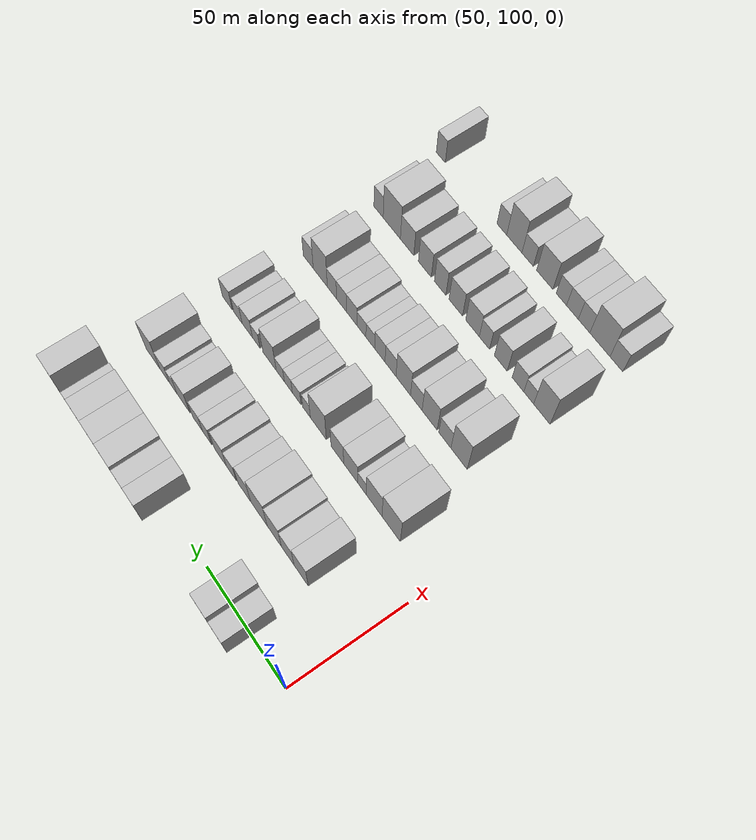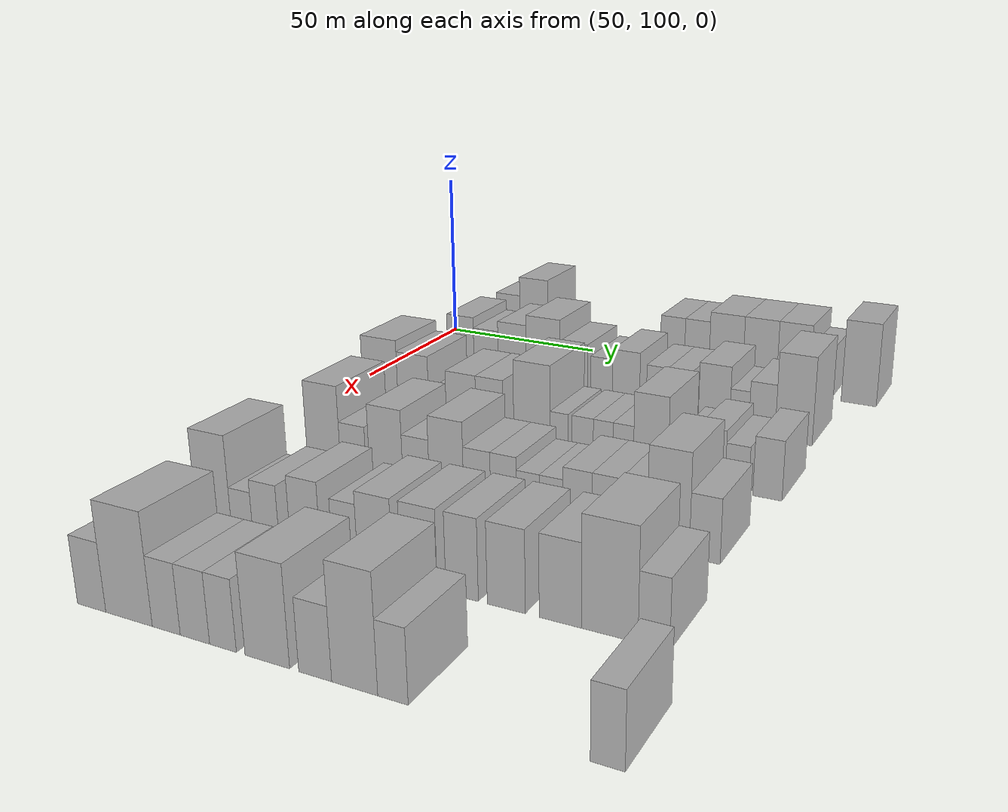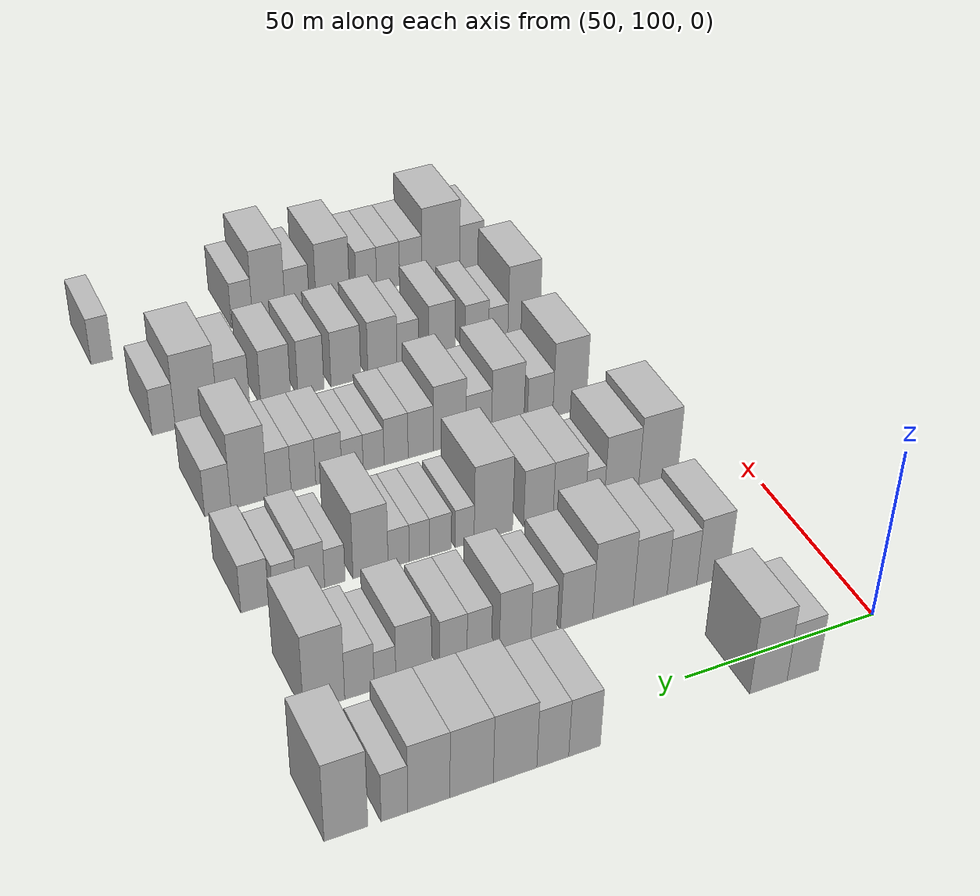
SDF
<sdf version="1.6">
 <world name="default">
  <model name="building_65">
   <static>1</static>
   <pose>50.0000 125.3704 0 0.000000 0.000000 0.000000</pose>
   <link name="link">
    <pose>0 0 9.00 0 0 0</pose>
    <collision name="collision"><geometry><box><size>20.0000 8.2746 18.0000</size></box></geometry></collision>
    <visual name="visual">
     <cast_shadows>0</cast_shadows>
     <geometry><box><size>20.0000 8.2746 18.0000</size></box></geometry>
     <material>
      <script>
       <uri>model://HANNAS_wall/materials/scripts</uri>
       <uri>model://HANNAS_wall/materials/textures</uri>
       <name>vrc/HANNAS_wall</name>
      </script>
     </material>
    </visual>
   </link>
  </model>
  <model name="building_66">
   <static>1</static>
   <pose>50.0000 134.3608 0 0.000000 0.000000 0.000000</pose>
   <link name="link">
    <pose>0 0 12.00 0 0 0</pose>
    <collision name="collision"><geometry><box><size>20.0000 9.7062 24.0000</size></box></geometry></collision>
    <visual name="visual">
     <cast_shadows>0</cast_shadows>
     <geometry><box><size>20.0000 9.7062 24.0000</size></box></geometry>
     <material>
      <script>
       <uri>model://HANNAS_wall/materials/scripts</uri>
       <uri>model://HANNAS_wall/materials/textures</uri>
       <name>vrc/HANNAS_wall</name>
      </script>
     </material>
    </visual>
   </link>
  </model>
  <model name="building_67">
   <static>1</static>
   <pose>50.0000 180.7285 0 0.000000 0.000000 0.000000</pose>
   <link name="link">
    <pose>0 0 9.00 0 0 0</pose>
    <collision name="collision"><geometry><box><size>20.0000 7.6764 18.0000</size></box></geometry></collision>
    <visual name="visual">
     <cast_shadows>0</cast_shadows>
     <geometry><box><size>20.0000 7.6764 18.0000</size></box></geometry>
     <material>
      <script>
       <uri>model://HANNAS_wall/materials/scripts</uri>
       <uri>model://HANNAS_wall/materials/textures</uri>
       <name>vrc/HANNAS_wall</name>
      </script>
     </material>
    </visual>
   </link>
  </model>
  <model name="building_68">
   <static>1</static>
   <pose>50.0000 188.4110 0 0.000000 0.000000 0.000000</pose>
   <link name="link">
    <pose>0 0 9.00 0 0 0</pose>
    <collision name="collision"><geometry><box><size>20.0000 7.6885 18.0000</size></box></geometry></collision>
    <visual name="visual">
     <cast_shadows>0</cast_shadows>
     <geometry><box><size>20.0000 7.6885 18.0000</size></box></geometry>
     <material>
      <script>
       <uri>model://HANNAS_wall/materials/scripts</uri>
       <uri>model://HANNAS_wall/materials/textures</uri>
       <name>vrc/HANNAS_wall</name>
      </script>
     </material>
    </visual>
   </link>
  </model>
  <model name="building_69">
   <static>1</static>
   <pose>50.0000 197.4464 0 0.000000 0.000000 0.000000</pose>
   <link name="link">
    <pose>0 0 10.50 0 0 0</pose>
    <collision name="collision"><geometry><box><size>20.0000 10.3824 21.0000</size></box></geometry></collision>
    <visual name="visual">
     <cast_shadows>0</cast_shadows>
     <geometry><box><size>20.0000 10.3824 21.0000</size></box></geometry>
     <material>
      <script>
       <uri>model://HANNAS_wall/materials/scripts</uri>
       <uri>model://HANNAS_wall/materials/textures</uri>
       <name>vrc/HANNAS_wall</name>
      </script>
     </material>
    </visual>
   </link>
  </model>
  <model name="building_70">
   <static>1</static>
   <pose>50.0000 207.7168 0 0.000000 0.000000 0.000000</pose>
   <link name="link">
    <pose>0 0 10.50 0 0 0</pose>
    <collision name="collision"><geometry><box><size>20.0000 10.1584 21.0000</size></box></geometry></collision>
    <visual name="visual">
     <cast_shadows>0</cast_shadows>
     <geometry><box><size>20.0000 10.1584 21.0000</size></box></geometry>
     <material>
      <script>
       <uri>model://HANNAS_wall/materials/scripts</uri>
       <uri>model://HANNAS_wall/materials/textures</uri>
       <name>vrc/HANNAS_wall</name>
      </script>
     </material>
    </visual>
   </link>
  </model>
  <model name="building_71">
   <static>1</static>
   <pose>50.0000 217.6561 0 0.000000 0.000000 0.000000</pose>
   <link name="link">
    <pose>0 0 10.50 0 0 0</pose>
    <collision name="collision"><geometry><box><size>20.0000 9.7201 21.0000</size></box></geometry></collision>
    <visual name="visual">
     <cast_shadows>0</cast_shadows>
     <geometry><box><size>20.0000 9.7201 21.0000</size></box></geometry>
     <material>
      <script>
       <uri>model://HANNAS_wall/materials/scripts</uri>
       <uri>model://HANNAS_wall/materials/textures</uri>
       <name>vrc/HANNAS_wall</name>
      </script>
     </material>
    </visual>
   </link>
  </model>
  <model name="building_72">
   <static>1</static>
   <pose>50.0000 225.5768 0 0.000000 0.000000 0.000000</pose>
   <link name="link">
    <pose>0 0 7.50 0 0 0</pose>
    <collision name="collision"><geometry><box><size>20.0000 6.1212 15.0000</size></box></geometry></collision>
    <visual name="visual">
     <cast_shadows>0</cast_shadows>
     <geometry><box><size>20.0000 6.1212 15.0000</size></box></geometry>
     <material>
      <script>
       <uri>model://HANNAS_wall/materials/scripts</uri>
       <uri>model://HANNAS_wall/materials/textures</uri>
       <name>vrc/HANNAS_wall</name>
      </script>
     </material>
    </visual>
   </link>
  </model>
  <model name="building_73">
   <static>1</static>
   <pose>50.0000 236.5684 0 0.000000 0.000000 0.000000</pose>
   <link name="link">
    <pose>0 0 12.00 0 0 0</pose>
    <collision name="collision"><geometry><box><size>20.0000 9.8622 24.0000</size></box></geometry></collision>
    <visual name="visual">
     <cast_shadows>0</cast_shadows>
     <geometry><box><size>20.0000 9.8622 24.0000</size></box></geometry>
     <material>
      <script>
       <uri>model://HANNAS_wall/materials/scripts</uri>
       <uri>model://HANNAS_wall/materials/textures</uri>
       <name>vrc/HANNAS_wall</name>
      </script>
     </material>
    </visual>
   </link>
  </model>
  <model name="building_187">
   <static>1</static>
   <pose>85.0000 128.6884 0 0.000000 0.000000 0.000000</pose>
   <link name="link">
    <pose>0 0 10.50 0 0 0</pose>
    <collision name="collision"><geometry><box><size>20.0000 8.7600 21.0000</size></box></geometry></collision>
    <visual name="visual">
     <cast_shadows>0</cast_shadows>
     <geometry><box><size>20.0000 8.7600 21.0000</size></box></geometry>
     <material>
      <script>
       <uri>model://HANNAS_wall/materials/scripts</uri>
       <uri>model://HANNAS_wall/materials/textures</uri>
       <name>vrc/HANNAS_wall</name>
      </script>
     </material>
    </visual>
   </link>
  </model>
  <model name="building_188">
   <static>1</static>
   <pose>85.0000 137.0574 0 0.000000 0.000000 0.000000</pose>
   <link name="link">
    <pose>0 0 9.00 0 0 0</pose>
    <collision name="collision"><geometry><box><size>20.0000 7.9781 18.0000</size></box></geometry></collision>
    <visual name="visual">
     <cast_shadows>0</cast_shadows>
     <geometry><box><size>20.0000 7.9781 18.0000</size></box></geometry>
     <material>
      <script>
       <uri>model://HANNAS_wall/materials/scripts</uri>
       <uri>model://HANNAS_wall/materials/textures</uri>
       <name>vrc/HANNAS_wall</name>
      </script>
     </material>
    </visual>
   </link>
  </model>
  <model name="building_189">
   <static>1</static>
   <pose>85.0000 145.5682 0 0.000000 0.000000 0.000000</pose>
   <link name="link">
    <pose>0 0 10.50 0 0 0</pose>
    <collision name="collision"><geometry><box><size>20.0000 9.0435 21.0000</size></box></geometry></collision>
    <visual name="visual">
     <cast_shadows>0</cast_shadows>
     <geometry><box><size>20.0000 9.0435 21.0000</size></box></geometry>
     <material>
      <script>
       <uri>model://HANNAS_wall/materials/scripts</uri>
       <uri>model://HANNAS_wall/materials/textures</uri>
       <name>vrc/HANNAS_wall</name>
      </script>
     </material>
    </visual>
   </link>
  </model>
  <model name="building_190">
   <static>1</static>
   <pose>85.0000 155.4036 0 0.000000 0.000000 0.000000</pose>
   <link name="link">
    <pose>0 0 12.00 0 0 0</pose>
    <collision name="collision"><geometry><box><size>20.0000 10.6272 24.0000</size></box></geometry></collision>
    <visual name="visual">
     <cast_shadows>0</cast_shadows>
     <geometry><box><size>20.0000 10.6272 24.0000</size></box></geometry>
     <material>
      <script>
       <uri>model://HANNAS_wall/materials/scripts</uri>
       <uri>model://HANNAS_wall/materials/textures</uri>
       <name>vrc/HANNAS_wall</name>
      </script>
     </material>
    </visual>
   </link>
  </model>
  <model name="building_191">
   <static>1</static>
   <pose>85.0000 164.9233 0 0.000000 0.000000 0.000000</pose>
   <link name="link">
    <pose>0 0 9.00 0 0 0</pose>
    <collision name="collision"><geometry><box><size>20.0000 8.4123 18.0000</size></box></geometry></collision>
    <visual name="visual">
     <cast_shadows>0</cast_shadows>
     <geometry><box><size>20.0000 8.4123 18.0000</size></box></geometry>
     <material>
      <script>
       <uri>model://HANNAS_wall/materials/scripts</uri>
       <uri>model://HANNAS_wall/materials/textures</uri>
       <name>vrc/HANNAS_wall</name>
      </script>
     </material>
    </visual>
   </link>
  </model>
  <model name="building_192">
   <static>1</static>
   <pose>85.0000 173.4345 0 0.000000 0.000000 0.000000</pose>
   <link name="link">
    <pose>0 0 7.50 0 0 0</pose>
    <collision name="collision"><geometry><box><size>20.0000 6.6102 15.0000</size></box></geometry></collision>
    <visual name="visual">
     <cast_shadows>0</cast_shadows>
     <geometry><box><size>20.0000 6.6102 15.0000</size></box></geometry>
     <material>
      <script>
       <uri>model://HANNAS_wall/materials/scripts</uri>
       <uri>model://HANNAS_wall/materials/textures</uri>
       <name>vrc/HANNAS_wall</name>
      </script>
     </material>
    </visual>
   </link>
  </model>
  <model name="building_193">
   <static>1</static>
   <pose>85.0000 180.7575 0 0.000000 0.000000 0.000000</pose>
   <link name="link">
    <pose>0 0 9.00 0 0 0</pose>
    <collision name="collision"><geometry><box><size>20.0000 8.0358 18.0000</size></box></geometry></collision>
    <visual name="visual">
     <cast_shadows>0</cast_shadows>
     <geometry><box><size>20.0000 8.0358 18.0000</size></box></geometry>
     <material>
      <script>
       <uri>model://HANNAS_wall/materials/scripts</uri>
       <uri>model://HANNAS_wall/materials/textures</uri>
       <name>vrc/HANNAS_wall</name>
      </script>
     </material>
    </visual>
   </link>
  </model>
  <model name="building_194">
   <static>1</static>
   <pose>85.0000 189.8563 0 0.000000 0.000000 0.000000</pose>
   <link name="link">
    <pose>0 0 7.50 0 0 0</pose>
    <collision name="collision"><geometry><box><size>20.0000 6.1618 15.0000</size></box></geometry></collision>
    <visual name="visual">
     <cast_shadows>0</cast_shadows>
     <geometry><box><size>20.0000 6.1618 15.0000</size></box></geometry>
     <material>
      <script>
       <uri>model://HANNAS_wall/materials/scripts</uri>
       <uri>model://HANNAS_wall/materials/textures</uri>
       <name>vrc/HANNAS_wall</name>
      </script>
     </material>
    </visual>
   </link>
  </model>
  <model name="building_195">
   <static>1</static>
   <pose>85.0000 196.3448 0 0.000000 0.000000 0.000000</pose>
   <link name="link">
    <pose>0 0 7.50 0 0 0</pose>
    <collision name="collision"><geometry><box><size>20.0000 6.8151 15.0000</size></box></geometry></collision>
    <visual name="visual">
     <cast_shadows>0</cast_shadows>
     <geometry><box><size>20.0000 6.8151 15.0000</size></box></geometry>
     <material>
      <script>
       <uri>model://HANNAS_wall/materials/scripts</uri>
       <uri>model://HANNAS_wall/materials/textures</uri>
       <name>vrc/HANNAS_wall</name>
      </script>
     </material>
    </visual>
   </link>
  </model>
  <model name="building_196">
   <static>1</static>
   <pose>85.0000 206.1352 0 0.000000 0.000000 0.000000</pose>
   <link name="link">
    <pose>0 0 9.00 0 0 0</pose>
    <collision name="collision"><geometry><box><size>20.0000 8.7656 18.0000</size></box></geometry></collision>
    <visual name="visual">
     <cast_shadows>0</cast_shadows>
     <geometry><box><size>20.0000 8.7656 18.0000</size></box></geometry>
     <material>
      <script>
       <uri>model://HANNAS_wall/materials/scripts</uri>
       <uri>model://HANNAS_wall/materials/textures</uri>
       <name>vrc/HANNAS_wall</name>
      </script>
     </material>
    </visual>
   </link>
  </model>
  <model name="building_197">
   <static>1</static>
   <pose>85.0000 213.1593 0 0.000000 0.000000 0.000000</pose>
   <link name="link">
    <pose>0 0 6.00 0 0 0</pose>
    <collision name="collision"><geometry><box><size>20.0000 5.2827 12.0000</size></box></geometry></collision>
    <visual name="visual">
     <cast_shadows>0</cast_shadows>
     <geometry><box><size>20.0000 5.2827 12.0000</size></box></geometry>
     <material>
      <script>
       <uri>model://HANNAS_wall/materials/scripts</uri>
       <uri>model://HANNAS_wall/materials/textures</uri>
       <name>vrc/HANNAS_wall</name>
      </script>
     </material>
    </visual>
   </link>
  </model>
  <model name="building_198">
   <static>1</static>
   <pose>85.0000 219.3545 0 0.000000 0.000000 0.000000</pose>
   <link name="link">
    <pose>0 0 7.50 0 0 0</pose>
    <collision name="collision"><geometry><box><size>20.0000 7.1077 15.0000</size></box></geometry></collision>
    <visual name="visual">
     <cast_shadows>0</cast_shadows>
     <geometry><box><size>20.0000 7.1077 15.0000</size></box></geometry>
     <material>
      <script>
       <uri>model://HANNAS_wall/materials/scripts</uri>
       <uri>model://HANNAS_wall/materials/textures</uri>
       <name>vrc/HANNAS_wall</name>
      </script>
     </material>
    </visual>
   </link>
  </model>
  <model name="building_199">
   <static>1</static>
   <pose>85.0000 227.8394 0 0.000000 0.000000 0.000000</pose>
   <link name="link">
    <pose>0 0 12.00 0 0 0</pose>
    <collision name="collision"><geometry><box><size>20.0000 9.8621 24.0000</size></box></geometry></collision>
    <visual name="visual">
     <cast_shadows>0</cast_shadows>
     <geometry><box><size>20.0000 9.8621 24.0000</size></box></geometry>
     <material>
      <script>
       <uri>model://HANNAS_wall/materials/scripts</uri>
       <uri>model://HANNAS_wall/materials/textures</uri>
       <name>vrc/HANNAS_wall</name>
      </script>
     </material>
    </visual>
   </link>
  </model>
  <model name="building_309">
   <static>1</static>
   <pose>120.0000 124.5062 0 0.000000 0.000000 0.000000</pose>
   <link name="link">
    <pose>0 0 12.00 0 0 0</pose>
    <collision name="collision"><geometry><box><size>20.0000 11.0599 24.0000</size></box></geometry></collision>
    <visual name="visual">
     <cast_shadows>0</cast_shadows>
     <geometry><box><size>20.0000 11.0599 24.0000</size></box></geometry>
     <material>
      <script>
       <uri>model://HANNAS_wall/materials/scripts</uri>
       <uri>model://HANNAS_wall/materials/textures</uri>
       <name>vrc/HANNAS_wall</name>
      </script>
     </material>
    </visual>
   </link>
  </model>
  <model name="building_310">
   <static>1</static>
   <pose>120.0000 134.8168 0 0.000000 0.000000 0.000000</pose>
   <link name="link">
    <pose>0 0 10.50 0 0 0</pose>
    <collision name="collision"><geometry><box><size>20.0000 9.5613 21.0000</size></box></geometry></collision>
    <visual name="visual">
     <cast_shadows>0</cast_shadows>
     <geometry><box><size>20.0000 9.5613 21.0000</size></box></geometry>
     <material>
      <script>
       <uri>model://HANNAS_wall/materials/scripts</uri>
       <uri>model://HANNAS_wall/materials/textures</uri>
       <name>vrc/HANNAS_wall</name>
      </script>
     </material>
    </visual>
   </link>
  </model>
  <model name="building_311">
   <static>1</static>
   <pose>120.0000 142.2368 0 0.000000 0.000000 0.000000</pose>
   <link name="link">
    <pose>0 0 6.00 0 0 0</pose>
    <collision name="collision"><geometry><box><size>20.0000 5.2786 12.0000</size></box></geometry></collision>
    <visual name="visual">
     <cast_shadows>0</cast_shadows>
     <geometry><box><size>20.0000 5.2786 12.0000</size></box></geometry>
     <material>
      <script>
       <uri>model://HANNAS_wall/materials/scripts</uri>
       <uri>model://HANNAS_wall/materials/textures</uri>
       <name>vrc/HANNAS_wall</name>
      </script>
     </material>
    </visual>
   </link>
  </model>
  <model name="building_312">
   <static>1</static>
   <pose>120.0000 149.3242 0 0.000000 0.000000 0.000000</pose>
   <link name="link">
    <pose>0 0 9.00 0 0 0</pose>
    <collision name="collision"><geometry><box><size>20.0000 8.8962 18.0000</size></box></geometry></collision>
    <visual name="visual">
     <cast_shadows>0</cast_shadows>
     <geometry><box><size>20.0000 8.8962 18.0000</size></box></geometry>
     <material>
      <script>
       <uri>model://HANNAS_wall/materials/scripts</uri>
       <uri>model://HANNAS_wall/materials/textures</uri>
       <name>vrc/HANNAS_wall</name>
      </script>
     </material>
    </visual>
   </link>
  </model>
  <model name="building_313">
   <static>1</static>
   <pose>120.0000 157.7871 0 0.000000 0.000000 0.000000</pose>
   <link name="link">
    <pose>0 0 9.00 0 0 0</pose>
    <collision name="collision"><geometry><box><size>20.0000 8.0296 18.0000</size></box></geometry></collision>
    <visual name="visual">
     <cast_shadows>0</cast_shadows>
     <geometry><box><size>20.0000 8.0296 18.0000</size></box></geometry>
     <material>
      <script>
       <uri>model://HANNAS_wall/materials/scripts</uri>
       <uri>model://HANNAS_wall/materials/textures</uri>
       <name>vrc/HANNAS_wall</name>
      </script>
     </material>
    </visual>
   </link>
  </model>
  <model name="building_314">
   <static>1</static>
   <pose>120.0000 169.9796 0 0.000000 0.000000 0.000000</pose>
   <link name="link">
    <pose>0 0 12.00 0 0 0</pose>
    <collision name="collision"><geometry><box><size>20.0000 10.3554 24.0000</size></box></geometry></collision>
    <visual name="visual">
     <cast_shadows>0</cast_shadows>
     <geometry><box><size>20.0000 10.3554 24.0000</size></box></geometry>
     <material>
      <script>
       <uri>model://HANNAS_wall/materials/scripts</uri>
       <uri>model://HANNAS_wall/materials/textures</uri>
       <name>vrc/HANNAS_wall</name>
      </script>
     </material>
    </visual>
   </link>
  </model>
  <model name="building_315">
   <static>1</static>
   <pose>120.0000 177.6559 0 0.000000 0.000000 0.000000</pose>
   <link name="link">
    <pose>0 0 6.00 0 0 0</pose>
    <collision name="collision"><geometry><box><size>20.0000 4.9972 12.0000</size></box></geometry></collision>
    <visual name="visual">
     <cast_shadows>0</cast_shadows>
     <geometry><box><size>20.0000 4.9972 12.0000</size></box></geometry>
     <material>
      <script>
       <uri>model://HANNAS_wall/materials/scripts</uri>
       <uri>model://HANNAS_wall/materials/textures</uri>
       <name>vrc/HANNAS_wall</name>
      </script>
     </material>
    </visual>
   </link>
  </model>
  <model name="building_316">
   <static>1</static>
   <pose>120.0000 184.0794 0 0.000000 0.000000 0.000000</pose>
   <link name="link">
    <pose>0 0 6.00 0 0 0</pose>
    <collision name="collision"><geometry><box><size>20.0000 5.8497 12.0000</size></box></geometry></collision>
    <visual name="visual">
     <cast_shadows>0</cast_shadows>
     <geometry><box><size>20.0000 5.8497 12.0000</size></box></geometry>
     <material>
      <script>
       <uri>model://HANNAS_wall/materials/scripts</uri>
       <uri>model://HANNAS_wall/materials/textures</uri>
       <name>vrc/HANNAS_wall</name>
      </script>
     </material>
    </visual>
   </link>
  </model>
  <model name="building_317">
   <static>1</static>
   <pose>120.0000 189.6554 0 0.000000 0.000000 0.000000</pose>
   <link name="link">
    <pose>0 0 6.00 0 0 0</pose>
    <collision name="collision"><geometry><box><size>20.0000 5.3022 12.0000</size></box></geometry></collision>
    <visual name="visual">
     <cast_shadows>0</cast_shadows>
     <geometry><box><size>20.0000 5.3022 12.0000</size></box></geometry>
     <material>
      <script>
       <uri>model://HANNAS_wall/materials/scripts</uri>
       <uri>model://HANNAS_wall/materials/textures</uri>
       <name>vrc/HANNAS_wall</name>
      </script>
     </material>
    </visual>
   </link>
  </model>
  <model name="building_318">
   <static>1</static>
   <pose>120.0000 195.0479 0 0.000000 0.000000 0.000000</pose>
   <link name="link">
    <pose>0 0 6.00 0 0 0</pose>
    <collision name="collision"><geometry><box><size>20.0000 5.4828 12.0000</size></box></geometry></collision>
    <visual name="visual">
     <cast_shadows>0</cast_shadows>
     <geometry><box><size>20.0000 5.4828 12.0000</size></box></geometry>
     <material>
      <script>
       <uri>model://HANNAS_wall/materials/scripts</uri>
       <uri>model://HANNAS_wall/materials/textures</uri>
       <name>vrc/HANNAS_wall</name>
      </script>
     </material>
    </visual>
   </link>
  </model>
  <model name="building_319">
   <static>1</static>
   <pose>120.0000 202.3151 0 0.000000 0.000000 0.000000</pose>
   <link name="link">
    <pose>0 0 10.50 0 0 0</pose>
    <collision name="collision"><geometry><box><size>20.0000 9.0516 21.0000</size></box></geometry></collision>
    <visual name="visual">
     <cast_shadows>0</cast_shadows>
     <geometry><box><size>20.0000 9.0516 21.0000</size></box></geometry>
     <material>
      <script>
       <uri>model://HANNAS_wall/materials/scripts</uri>
       <uri>model://HANNAS_wall/materials/textures</uri>
       <name>vrc/HANNAS_wall</name>
      </script>
     </material>
    </visual>
   </link>
  </model>
  <model name="building_320">
   <static>1</static>
   <pose>120.0000 211.4617 0 0.000000 0.000000 0.000000</pose>
   <link name="link">
    <pose>0 0 6.00 0 0 0</pose>
    <collision name="collision"><geometry><box><size>20.0000 5.2416 12.0000</size></box></geometry></collision>
    <visual name="visual">
     <cast_shadows>0</cast_shadows>
     <geometry><box><size>20.0000 5.2416 12.0000</size></box></geometry>
     <material>
      <script>
       <uri>model://HANNAS_wall/materials/scripts</uri>
       <uri>model://HANNAS_wall/materials/textures</uri>
       <name>vrc/HANNAS_wall</name>
      </script>
     </material>
    </visual>
   </link>
  </model>
  <model name="building_321">
   <static>1</static>
   <pose>120.0000 217.6565 0 0.000000 0.000000 0.000000</pose>
   <link name="link">
    <pose>0 0 7.50 0 0 0</pose>
    <collision name="collision"><geometry><box><size>20.0000 7.1481 15.0000</size></box></geometry></collision>
    <visual name="visual">
     <cast_shadows>0</cast_shadows>
     <geometry><box><size>20.0000 7.1481 15.0000</size></box></geometry>
     <material>
      <script>
       <uri>model://HANNAS_wall/materials/scripts</uri>
       <uri>model://HANNAS_wall/materials/textures</uri>
       <name>vrc/HANNAS_wall</name>
      </script>
     </material>
    </visual>
   </link>
  </model>
  <model name="building_322">
   <static>1</static>
   <pose>120.0000 224.1567 0 0.000000 0.000000 0.000000</pose>
   <link name="link">
    <pose>0 0 6.00 0 0 0</pose>
    <collision name="collision"><geometry><box><size>20.0000 5.8521 12.0000</size></box></geometry></collision>
    <visual name="visual">
     <cast_shadows>0</cast_shadows>
     <geometry><box><size>20.0000 5.8521 12.0000</size></box></geometry>
     <material>
      <script>
       <uri>model://HANNAS_wall/materials/scripts</uri>
       <uri>model://HANNAS_wall/materials/textures</uri>
       <name>vrc/HANNAS_wall</name>
      </script>
     </material>
    </visual>
   </link>
  </model>
  <model name="building_323">
   <static>1</static>
   <pose>120.0000 231.5976 0 0.000000 0.000000 0.000000</pose>
   <link name="link">
    <pose>0 0 7.50 0 0 0</pose>
    <collision name="collision"><geometry><box><size>20.0000 7.0298 15.0000</size></box></geometry></collision>
    <visual name="visual">
     <cast_shadows>0</cast_shadows>
     <geometry><box><size>20.0000 7.0298 15.0000</size></box></geometry>
     <material>
      <script>
       <uri>model://HANNAS_wall/materials/scripts</uri>
       <uri>model://HANNAS_wall/materials/textures</uri>
       <name>vrc/HANNAS_wall</name>
      </script>
     </material>
    </visual>
   </link>
  </model>
  <model name="building_426">
   <static>1</static>
   <pose>155.0000 131.6794 0 0.000000 0.000000 0.000000</pose>
   <link name="link">
    <pose>0 0 12.00 0 0 0</pose>
    <collision name="collision"><geometry><box><size>20.0000 9.7723 24.0000</size></box></geometry></collision>
    <visual name="visual">
     <cast_shadows>0</cast_shadows>
     <geometry><box><size>20.0000 9.7723 24.0000</size></box></geometry>
     <material>
      <script>
       <uri>model://HANNAS_wall/materials/scripts</uri>
       <uri>model://HANNAS_wall/materials/textures</uri>
       <name>vrc/HANNAS_wall</name>
      </script>
     </material>
    </visual>
   </link>
  </model>
  <model name="building_427">
   <static>1</static>
   <pose>155.0000 140.2449 0 0.000000 0.000000 0.000000</pose>
   <link name="link">
    <pose>0 0 7.50 0 0 0</pose>
    <collision name="collision"><geometry><box><size>20.0000 7.3586 15.0000</size></box></geometry></collision>
    <visual name="visual">
     <cast_shadows>0</cast_shadows>
     <geometry><box><size>20.0000 7.3586 15.0000</size></box></geometry>
     <material>
      <script>
       <uri>model://HANNAS_wall/materials/scripts</uri>
       <uri>model://HANNAS_wall/materials/textures</uri>
       <name>vrc/HANNAS_wall</name>
      </script>
     </material>
    </visual>
   </link>
  </model>
  <model name="building_428">
   <static>1</static>
   <pose>155.0000 149.5713 0 0.000000 0.000000 0.000000</pose>
   <link name="link">
    <pose>0 0 10.50 0 0 0</pose>
    <collision name="collision"><geometry><box><size>20.0000 9.2943 21.0000</size></box></geometry></collision>
    <visual name="visual">
     <cast_shadows>0</cast_shadows>
     <geometry><box><size>20.0000 9.2943 21.0000</size></box></geometry>
     <material>
      <script>
       <uri>model://HANNAS_wall/materials/scripts</uri>
       <uri>model://HANNAS_wall/materials/textures</uri>
       <name>vrc/HANNAS_wall</name>
      </script>
     </material>
    </visual>
   </link>
  </model>
  <model name="building_429">
   <static>1</static>
   <pose>155.0000 157.8345 0 0.000000 0.000000 0.000000</pose>
   <link name="link">
    <pose>0 0 7.50 0 0 0</pose>
    <collision name="collision"><geometry><box><size>20.0000 7.2320 15.0000</size></box></geometry></collision>
    <visual name="visual">
     <cast_shadows>0</cast_shadows>
     <geometry><box><size>20.0000 7.2320 15.0000</size></box></geometry>
     <material>
      <script>
       <uri>model://HANNAS_wall/materials/scripts</uri>
       <uri>model://HANNAS_wall/materials/textures</uri>
       <name>vrc/HANNAS_wall</name>
      </script>
     </material>
    </visual>
   </link>
  </model>
  <model name="building_430">
   <static>1</static>
   <pose>155.0000 166.0315 0 0.000000 0.000000 0.000000</pose>
   <link name="link">
    <pose>0 0 10.50 0 0 0</pose>
    <collision name="collision"><geometry><box><size>20.0000 9.1619 21.0000</size></box></geometry></collision>
    <visual name="visual">
     <cast_shadows>0</cast_shadows>
     <geometry><box><size>20.0000 9.1619 21.0000</size></box></geometry>
     <material>
      <script>
       <uri>model://HANNAS_wall/materials/scripts</uri>
       <uri>model://HANNAS_wall/materials/textures</uri>
       <name>vrc/HANNAS_wall</name>
      </script>
     </material>
    </visual>
   </link>
  </model>
  <model name="building_431">
   <static>1</static>
   <pose>155.0000 174.1231 0 0.000000 0.000000 0.000000</pose>
   <link name="link">
    <pose>0 0 7.50 0 0 0</pose>
    <collision name="collision"><geometry><box><size>20.0000 7.0213 15.0000</size></box></geometry></collision>
    <visual name="visual">
     <cast_shadows>0</cast_shadows>
     <geometry><box><size>20.0000 7.0213 15.0000</size></box></geometry>
     <material>
      <script>
       <uri>model://HANNAS_wall/materials/scripts</uri>
       <uri>model://HANNAS_wall/materials/textures</uri>
       <name>vrc/HANNAS_wall</name>
      </script>
     </material>
    </visual>
   </link>
  </model>
  <model name="building_432">
   <static>1</static>
   <pose>155.0000 180.9503 0 0.000000 0.000000 0.000000</pose>
   <link name="link">
    <pose>0 0 7.50 0 0 0</pose>
    <collision name="collision"><geometry><box><size>20.0000 6.6332 15.0000</size></box></geometry></collision>
    <visual name="visual">
     <cast_shadows>0</cast_shadows>
     <geometry><box><size>20.0000 6.6332 15.0000</size></box></geometry>
     <material>
      <script>
       <uri>model://HANNAS_wall/materials/scripts</uri>
       <uri>model://HANNAS_wall/materials/textures</uri>
       <name>vrc/HANNAS_wall</name>
      </script>
     </material>
    </visual>
   </link>
  </model>
  <model name="building_433">
   <static>1</static>
   <pose>155.0000 187.1237 0 0.000000 0.000000 0.000000</pose>
   <link name="link">
    <pose>0 0 6.00 0 0 0</pose>
    <collision name="collision"><geometry><box><size>20.0000 5.7136 12.0000</size></box></geometry></collision>
    <visual name="visual">
     <cast_shadows>0</cast_shadows>
     <geometry><box><size>20.0000 5.7136 12.0000</size></box></geometry>
     <material>
      <script>
       <uri>model://HANNAS_wall/materials/scripts</uri>
       <uri>model://HANNAS_wall/materials/textures</uri>
       <name>vrc/HANNAS_wall</name>
      </script>
     </material>
    </visual>
   </link>
  </model>
  <model name="building_434">
   <static>1</static>
   <pose>155.0000 192.8877 0 0.000000 0.000000 0.000000</pose>
   <link name="link">
    <pose>0 0 6.00 0 0 0</pose>
    <collision name="collision"><geometry><box><size>20.0000 5.8143 12.0000</size></box></geometry></collision>
    <visual name="visual">
     <cast_shadows>0</cast_shadows>
     <geometry><box><size>20.0000 5.8143 12.0000</size></box></geometry>
     <material>
      <script>
       <uri>model://HANNAS_wall/materials/scripts</uri>
       <uri>model://HANNAS_wall/materials/textures</uri>
       <name>vrc/HANNAS_wall</name>
      </script>
     </material>
    </visual>
   </link>
  </model>
  <model name="building_435">
   <static>1</static>
   <pose>155.0000 199.3074 0 0.000000 0.000000 0.000000</pose>
   <link name="link">
    <pose>0 0 7.50 0 0 0</pose>
    <collision name="collision"><geometry><box><size>20.0000 7.0252 15.0000</size></box></geometry></collision>
    <visual name="visual">
     <cast_shadows>0</cast_shadows>
     <geometry><box><size>20.0000 7.0252 15.0000</size></box></geometry>
     <material>
      <script>
       <uri>model://HANNAS_wall/materials/scripts</uri>
       <uri>model://HANNAS_wall/materials/textures</uri>
       <name>vrc/HANNAS_wall</name>
      </script>
     </material>
    </visual>
   </link>
  </model>
  <model name="building_436">
   <static>1</static>
   <pose>155.0000 206.1209 0 0.000000 0.000000 0.000000</pose>
   <link name="link">
    <pose>0 0 7.50 0 0 0</pose>
    <collision name="collision"><geometry><box><size>20.0000 6.6017 15.0000</size></box></geometry></collision>
    <visual name="visual">
     <cast_shadows>0</cast_shadows>
     <geometry><box><size>20.0000 6.6017 15.0000</size></box></geometry>
     <material>
      <script>
       <uri>model://HANNAS_wall/materials/scripts</uri>
       <uri>model://HANNAS_wall/materials/textures</uri>
       <name>vrc/HANNAS_wall</name>
      </script>
     </material>
    </visual>
   </link>
  </model>
  <model name="building_437">
   <static>1</static>
   <pose>155.0000 212.5726 0 0.000000 0.000000 0.000000</pose>
   <link name="link">
    <pose>0 0 7.50 0 0 0</pose>
    <collision name="collision"><geometry><box><size>20.0000 6.3017 15.0000</size></box></geometry></collision>
    <visual name="visual">
     <cast_shadows>0</cast_shadows>
     <geometry><box><size>20.0000 6.3017 15.0000</size></box></geometry>
     <material>
      <script>
       <uri>model://HANNAS_wall/materials/scripts</uri>
       <uri>model://HANNAS_wall/materials/textures</uri>
       <name>vrc/HANNAS_wall</name>
      </script>
     </material>
    </visual>
   </link>
  </model>
  <model name="building_438">
   <static>1</static>
   <pose>155.0000 220.5285 0 0.000000 0.000000 0.000000</pose>
   <link name="link">
    <pose>0 0 12.00 0 0 0</pose>
    <collision name="collision"><geometry><box><size>20.0000 9.6102 24.0000</size></box></geometry></collision>
    <visual name="visual">
     <cast_shadows>0</cast_shadows>
     <geometry><box><size>20.0000 9.6102 24.0000</size></box></geometry>
     <material>
      <script>
       <uri>model://HANNAS_wall/materials/scripts</uri>
       <uri>model://HANNAS_wall/materials/textures</uri>
       <name>vrc/HANNAS_wall</name>
      </script>
     </material>
    </visual>
   </link>
  </model>
  <model name="building_439">
   <static>1</static>
   <pose>155.0000 228.7446 0 0.000000 0.000000 0.000000</pose>
   <link name="link">
    <pose>0 0 7.50 0 0 0</pose>
    <collision name="collision"><geometry><box><size>20.0000 6.8219 15.0000</size></box></geometry></collision>
    <visual name="visual">
     <cast_shadows>0</cast_shadows>
     <geometry><box><size>20.0000 6.8219 15.0000</size></box></geometry>
     <material>
      <script>
       <uri>model://HANNAS_wall/materials/scripts</uri>
       <uri>model://HANNAS_wall/materials/textures</uri>
       <name>vrc/HANNAS_wall</name>
      </script>
     </material>
    </visual>
   </link>
  </model>
  <model name="building_553">
   <static>1</static>
   <pose>190.0000 128.1644 0 0.000000 0.000000 0.000000</pose>
   <link name="link">
    <pose>0 0 12.00 0 0 0</pose>
    <collision name="collision"><geometry><box><size>20.0000 9.6679 24.0000</size></box></geometry></collision>
    <visual name="visual">
     <cast_shadows>0</cast_shadows>
     <geometry><box><size>20.0000 9.6679 24.0000</size></box></geometry>
     <material>
      <script>
       <uri>model://HANNAS_wall/materials/scripts</uri>
       <uri>model://HANNAS_wall/materials/textures</uri>
       <name>vrc/HANNAS_wall</name>
      </script>
     </material>
    </visual>
   </link>
  </model>
  <model name="building_554">
   <static>1</static>
   <pose>190.0000 135.9060 0 0.000000 0.000000 0.000000</pose>
   <link name="link">
    <pose>0 0 6.00 0 0 0</pose>
    <collision name="collision"><geometry><box><size>20.0000 5.8153 12.0000</size></box></geometry></collision>
    <visual name="visual">
     <cast_shadows>0</cast_shadows>
     <geometry><box><size>20.0000 5.8153 12.0000</size></box></geometry>
     <material>
      <script>
       <uri>model://HANNAS_wall/materials/scripts</uri>
       <uri>model://HANNAS_wall/materials/textures</uri>
       <name>vrc/HANNAS_wall</name>
      </script>
     </material>
    </visual>
   </link>
  </model>
  <model name="building_555">
   <static>1</static>
   <pose>190.0000 142.3225 0 0.000000 0.000000 0.000000</pose>
   <link name="link">
    <pose>0 0 7.50 0 0 0</pose>
    <collision name="collision"><geometry><box><size>20.0000 7.0176 15.0000</size></box></geometry></collision>
    <visual name="visual">
     <cast_shadows>0</cast_shadows>
     <geometry><box><size>20.0000 7.0176 15.0000</size></box></geometry>
     <material>
      <script>
       <uri>model://HANNAS_wall/materials/scripts</uri>
       <uri>model://HANNAS_wall/materials/textures</uri>
       <name>vrc/HANNAS_wall</name>
      </script>
     </material>
    </visual>
   </link>
  </model>
  <model name="building_556">
   <static>1</static>
   <pose>190.0000 152.7217 0 0.000000 0.000000 0.000000</pose>
   <link name="link">
    <pose>0 0 9.00 0 0 0</pose>
    <collision name="collision"><geometry><box><size>20.0000 7.7807 18.0000</size></box></geometry></collision>
    <visual name="visual">
     <cast_shadows>0</cast_shadows>
     <geometry><box><size>20.0000 7.7807 18.0000</size></box></geometry>
     <material>
      <script>
       <uri>model://HANNAS_wall/materials/scripts</uri>
       <uri>model://HANNAS_wall/materials/textures</uri>
       <name>vrc/HANNAS_wall</name>
      </script>
     </material>
    </visual>
   </link>
  </model>
  <model name="building_557">
   <static>1</static>
   <pose>190.0000 162.7680 0 0.000000 0.000000 0.000000</pose>
   <link name="link">
    <pose>0 0 7.50 0 0 0</pose>
    <collision name="collision"><geometry><box><size>20.0000 6.3118 15.0000</size></box></geometry></collision>
    <visual name="visual">
     <cast_shadows>0</cast_shadows>
     <geometry><box><size>20.0000 6.3118 15.0000</size></box></geometry>
     <material>
      <script>
       <uri>model://HANNAS_wall/materials/scripts</uri>
       <uri>model://HANNAS_wall/materials/textures</uri>
       <name>vrc/HANNAS_wall</name>
      </script>
     </material>
    </visual>
   </link>
  </model>
  <model name="building_558">
   <static>1</static>
   <pose>190.0000 170.1664 0 0.000000 0.000000 0.000000</pose>
   <link name="link">
    <pose>0 0 9.00 0 0 0</pose>
    <collision name="collision"><geometry><box><size>20.0000 8.4850 18.0000</size></box></geometry></collision>
    <visual name="visual">
     <cast_shadows>0</cast_shadows>
     <geometry><box><size>20.0000 8.4850 18.0000</size></box></geometry>
     <material>
      <script>
       <uri>model://HANNAS_wall/materials/scripts</uri>
       <uri>model://HANNAS_wall/materials/textures</uri>
       <name>vrc/HANNAS_wall</name>
      </script>
     </material>
    </visual>
   </link>
  </model>
  <model name="building_559">
   <static>1</static>
   <pose>190.0000 180.7022 0 0.000000 0.000000 0.000000</pose>
   <link name="link">
    <pose>0 0 9.00 0 0 0</pose>
    <collision name="collision"><geometry><box><size>20.0000 8.5866 18.0000</size></box></geometry></collision>
    <visual name="visual">
     <cast_shadows>0</cast_shadows>
     <geometry><box><size>20.0000 8.5866 18.0000</size></box></geometry>
     <material>
      <script>
       <uri>model://HANNAS_wall/materials/scripts</uri>
       <uri>model://HANNAS_wall/materials/textures</uri>
       <name>vrc/HANNAS_wall</name>
      </script>
     </material>
    </visual>
   </link>
  </model>
  <model name="building_560">
   <static>1</static>
   <pose>190.0000 190.6945 0 0.000000 0.000000 0.000000</pose>
   <link name="link">
    <pose>0 0 9.00 0 0 0</pose>
    <collision name="collision"><geometry><box><size>20.0000 7.3978 18.0000</size></box></geometry></collision>
    <visual name="visual">
     <cast_shadows>0</cast_shadows>
     <geometry><box><size>20.0000 7.3978 18.0000</size></box></geometry>
     <material>
      <script>
       <uri>model://HANNAS_wall/materials/scripts</uri>
       <uri>model://HANNAS_wall/materials/textures</uri>
       <name>vrc/HANNAS_wall</name>
      </script>
     </material>
    </visual>
   </link>
  </model>
  <model name="building_561">
   <static>1</static>
   <pose>190.0000 200.6027 0 0.000000 0.000000 0.000000</pose>
   <link name="link">
    <pose>0 0 9.00 0 0 0</pose>
    <collision name="collision"><geometry><box><size>20.0000 8.4186 18.0000</size></box></geometry></collision>
    <visual name="visual">
     <cast_shadows>0</cast_shadows>
     <geometry><box><size>20.0000 8.4186 18.0000</size></box></geometry>
     <material>
      <script>
       <uri>model://HANNAS_wall/materials/scripts</uri>
       <uri>model://HANNAS_wall/materials/textures</uri>
       <name>vrc/HANNAS_wall</name>
      </script>
     </material>
    </visual>
   </link>
  </model>
  <model name="building_562">
   <static>1</static>
   <pose>190.0000 212.2721 0 0.000000 0.000000 0.000000</pose>
   <link name="link">
    <pose>0 0 9.00 0 0 0</pose>
    <collision name="collision"><geometry><box><size>20.0000 8.9201 18.0000</size></box></geometry></collision>
    <visual name="visual">
     <cast_shadows>0</cast_shadows>
     <geometry><box><size>20.0000 8.9201 18.0000</size></box></geometry>
     <material>
      <script>
       <uri>model://HANNAS_wall/materials/scripts</uri>
       <uri>model://HANNAS_wall/materials/textures</uri>
       <name>vrc/HANNAS_wall</name>
      </script>
     </material>
    </visual>
   </link>
  </model>
  <model name="building_563">
   <static>1</static>
   <pose>190.0000 222.5264 0 0.000000 0.000000 0.000000</pose>
   <link name="link">
    <pose>0 0 12.00 0 0 0</pose>
    <collision name="collision"><geometry><box><size>20.0000 11.5886 24.0000</size></box></geometry></collision>
    <visual name="visual">
     <cast_shadows>0</cast_shadows>
     <geometry><box><size>20.0000 11.5886 24.0000</size></box></geometry>
     <material>
      <script>
       <uri>model://HANNAS_wall/materials/scripts</uri>
       <uri>model://HANNAS_wall/materials/textures</uri>
       <name>vrc/HANNAS_wall</name>
      </script>
     </material>
    </visual>
   </link>
  </model>
  <model name="building_564">
   <static>1</static>
   <pose>190.0000 231.4734 0 0.000000 0.000000 0.000000</pose>
   <link name="link">
    <pose>0 0 7.50 0 0 0</pose>
    <collision name="collision"><geometry><box><size>20.0000 6.3054 15.0000</size></box></geometry></collision>
    <visual name="visual">
     <cast_shadows>0</cast_shadows>
     <geometry><box><size>20.0000 6.3054 15.0000</size></box></geometry>
     <material>
      <script>
       <uri>model://HANNAS_wall/materials/scripts</uri>
       <uri>model://HANNAS_wall/materials/textures</uri>
       <name>vrc/HANNAS_wall</name>
      </script>
     </material>
    </visual>
   </link>
  </model>
  <model name="building_682">
   <static>1</static>
   <pose>225.0000 127.9337 0 0.000000 0.000000 0.000000</pose>
   <link name="link">
    <pose>0 0 7.50 0 0 0</pose>
    <collision name="collision"><geometry><box><size>20.0000 7.4400 15.0000</size></box></geometry></collision>
    <visual name="visual">
     <cast_shadows>0</cast_shadows>
     <geometry><box><size>20.0000 7.4400 15.0000</size></box></geometry>
     <material>
      <script>
       <uri>model://HANNAS_wall/materials/scripts</uri>
       <uri>model://HANNAS_wall/materials/textures</uri>
       <name>vrc/HANNAS_wall</name>
      </script>
     </material>
    </visual>
   </link>
  </model>
  <model name="building_683">
   <static>1</static>
   <pose>225.0000 137.5679 0 0.000000 0.000000 0.000000</pose>
   <link name="link">
    <pose>0 0 12.00 0 0 0</pose>
    <collision name="collision"><geometry><box><size>20.0000 11.8285 24.0000</size></box></geometry></collision>
    <visual name="visual">
     <cast_shadows>0</cast_shadows>
     <geometry><box><size>20.0000 11.8285 24.0000</size></box></geometry>
     <material>
      <script>
       <uri>model://HANNAS_wall/materials/scripts</uri>
       <uri>model://HANNAS_wall/materials/textures</uri>
       <name>vrc/HANNAS_wall</name>
      </script>
     </material>
    </visual>
   </link>
  </model>
  <model name="building_684">
   <static>1</static>
   <pose>225.0000 146.9258 0 0.000000 0.000000 0.000000</pose>
   <link name="link">
    <pose>0 0 7.50 0 0 0</pose>
    <collision name="collision"><geometry><box><size>20.0000 6.8873 15.0000</size></box></geometry></collision>
    <visual name="visual">
     <cast_shadows>0</cast_shadows>
     <geometry><box><size>20.0000 6.8873 15.0000</size></box></geometry>
     <material>
      <script>
       <uri>model://HANNAS_wall/materials/scripts</uri>
       <uri>model://HANNAS_wall/materials/textures</uri>
       <name>vrc/HANNAS_wall</name>
      </script>
     </material>
    </visual>
   </link>
  </model>
  <model name="building_685">
   <static>1</static>
   <pose>225.0000 153.8934 0 0.000000 0.000000 0.000000</pose>
   <link name="link">
    <pose>0 0 7.50 0 0 0</pose>
    <collision name="collision"><geometry><box><size>20.0000 7.0479 15.0000</size></box></geometry></collision>
    <visual name="visual">
     <cast_shadows>0</cast_shadows>
     <geometry><box><size>20.0000 7.0479 15.0000</size></box></geometry>
     <material>
      <script>
       <uri>model://HANNAS_wall/materials/scripts</uri>
       <uri>model://HANNAS_wall/materials/textures</uri>
       <name>vrc/HANNAS_wall</name>
      </script>
     </material>
    </visual>
   </link>
  </model>
  <model name="building_686">
   <static>1</static>
   <pose>225.0000 160.5498 0 0.000000 0.000000 0.000000</pose>
   <link name="link">
    <pose>0 0 7.50 0 0 0</pose>
    <collision name="collision"><geometry><box><size>20.0000 6.2649 15.0000</size></box></geometry></collision>
    <visual name="visual">
     <cast_shadows>0</cast_shadows>
     <geometry><box><size>20.0000 6.2649 15.0000</size></box></geometry>
     <material>
      <script>
       <uri>model://HANNAS_wall/materials/scripts</uri>
       <uri>model://HANNAS_wall/materials/textures</uri>
       <name>vrc/HANNAS_wall</name>
      </script>
     </material>
    </visual>
   </link>
  </model>
  <model name="building_687">
   <static>1</static>
   <pose>225.0000 170.7174 0 0.000000 0.000000 0.000000</pose>
   <link name="link">
    <pose>0 0 10.50 0 0 0</pose>
    <collision name="collision"><geometry><box><size>20.0000 10.0703 21.0000</size></box></geometry></collision>
    <visual name="visual">
     <cast_shadows>0</cast_shadows>
     <geometry><box><size>20.0000 10.0703 21.0000</size></box></geometry>
     <material>
      <script>
       <uri>model://HANNAS_wall/materials/scripts</uri>
       <uri>model://HANNAS_wall/materials/textures</uri>
       <name>vrc/HANNAS_wall</name>
      </script>
     </material>
    </visual>
   </link>
  </model>
  <model name="building_688">
   <static>1</static>
   <pose>225.0000 181.3264 0 0.000000 0.000000 0.000000</pose>
   <link name="link">
    <pose>0 0 7.50 0 0 0</pose>
    <collision name="collision"><geometry><box><size>20.0000 7.1478 15.0000</size></box></geometry></collision>
    <visual name="visual">
     <cast_shadows>0</cast_shadows>
     <geometry><box><size>20.0000 7.1478 15.0000</size></box></geometry>
     <material>
      <script>
       <uri>model://HANNAS_wall/materials/scripts</uri>
       <uri>model://HANNAS_wall/materials/textures</uri>
       <name>vrc/HANNAS_wall</name>
      </script>
     </material>
    </visual>
   </link>
  </model>
  <model name="building_689">
   <static>1</static>
   <pose>225.0000 189.7199 0 0.000000 0.000000 0.000000</pose>
   <link name="link">
    <pose>0 0 12.00 0 0 0</pose>
    <collision name="collision"><geometry><box><size>20.0000 9.6391 24.0000</size></box></geometry></collision>
    <visual name="visual">
     <cast_shadows>0</cast_shadows>
     <geometry><box><size>20.0000 9.6391 24.0000</size></box></geometry>
     <material>
      <script>
       <uri>model://HANNAS_wall/materials/scripts</uri>
       <uri>model://HANNAS_wall/materials/textures</uri>
       <name>vrc/HANNAS_wall</name>
      </script>
     </material>
    </visual>
   </link>
  </model>
  <model name="building_690">
   <static>1</static>
   <pose>225.0000 197.6307 0 0.000000 0.000000 0.000000</pose>
   <link name="link">
    <pose>0 0 7.50 0 0 0</pose>
    <collision name="collision"><geometry><box><size>20.0000 6.1826 15.0000</size></box></geometry></collision>
    <visual name="visual">
     <cast_shadows>0</cast_shadows>
     <geometry><box><size>20.0000 6.1826 15.0000</size></box></geometry>
     <material>
      <script>
       <uri>model://HANNAS_wall/materials/scripts</uri>
       <uri>model://HANNAS_wall/materials/textures</uri>
       <name>vrc/HANNAS_wall</name>
      </script>
     </material>
    </visual>
   </link>
  </model>
  <model name="building_691">
   <static>1</static>
   <pose>225.0000 237.7932 0 0.000000 0.000000 0.000000</pose>
   <link name="link">
    <pose>0 0 7.50 0 0 0</pose>
    <collision name="collision"><geometry><box><size>20.0000 6.0474 15.0000</size></box></geometry></collision>
    <visual name="visual">
     <cast_shadows>0</cast_shadows>
     <geometry><box><size>20.0000 6.0474 15.0000</size></box></geometry>
     <material>
      <script>
       <uri>model://HANNAS_wall/materials/scripts</uri>
       <uri>model://HANNAS_wall/materials/textures</uri>
       <name>vrc/HANNAS_wall</name>
      </script>
     </material>
    </visual>
   </link>
  </model>
 </world>
</sdf>
